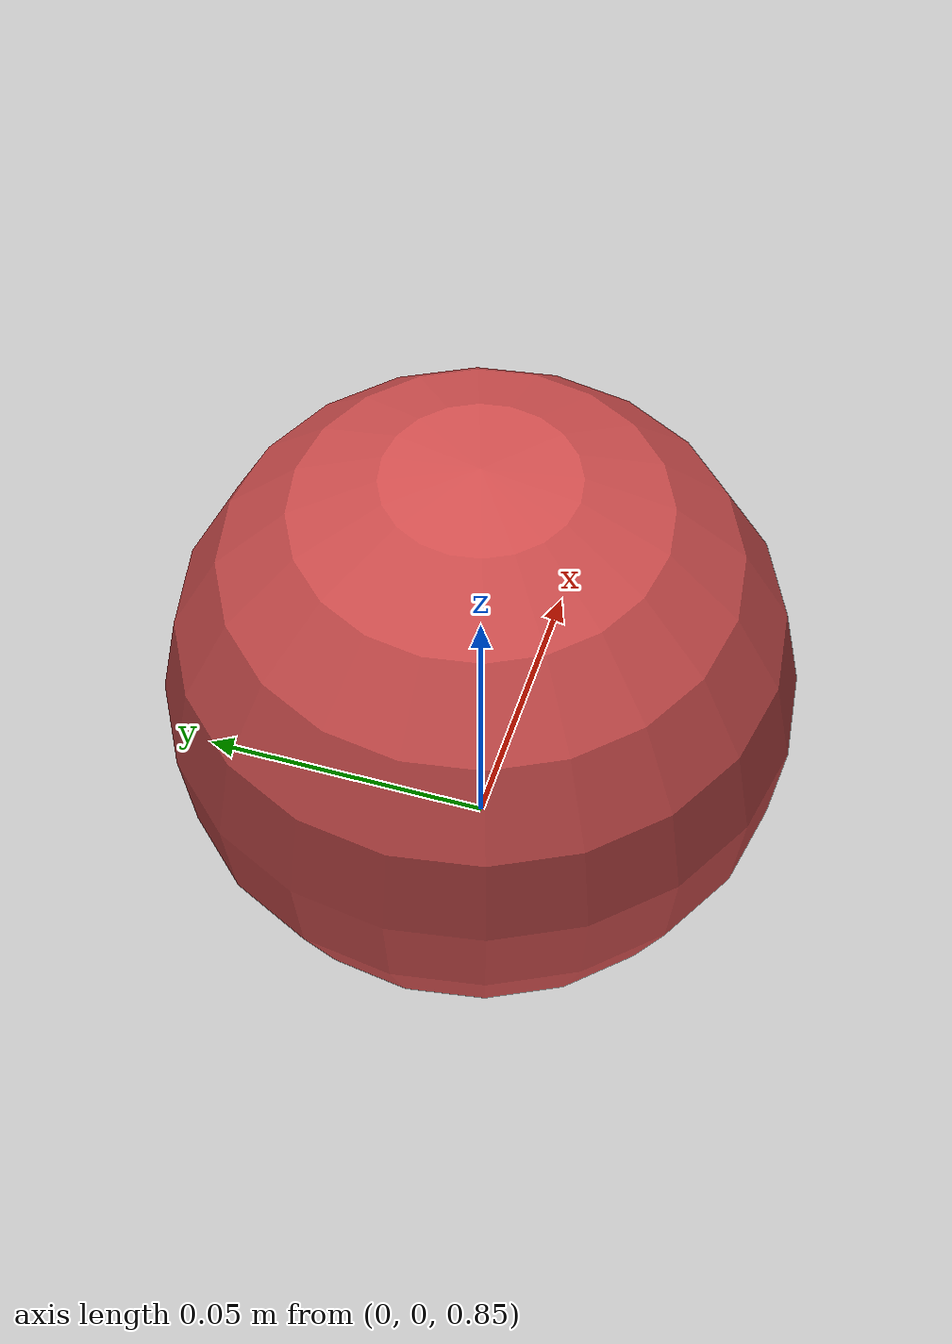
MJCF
<mujoco model="throw_000">
  <option timestep="0.001" gravity="0 0 -9.81"/>

  <visual>
    <headlight ambient="0.5 0.5 0.5"/>
  </visual>

  <asset>
    <texture name="grid" type="2d" builtin="checker" width="512" height="512" rgb1="0.2 0.3 0.4" rgb2="0.3 0.4 0.5"/>
    <material name="grid" texture="grid" texrepeat="1 1" reflectance="0.2"/>
    <material name="finger" rgba="0.8 0.3 0.3 1.0"/>
  </asset>

  <worldbody>
    <!-- Ground plane -->
    <geom name="floor" type="plane" size="2 2 0.1" material="grid"
          condim="6" friction="0.5813981305244577 0.005 0.0001" solref="0.02 1.3920546208850417"/>

    <!-- Sphere -->
    <body name="fingertip" pos="0 0 0.8855384713174609">
      <freejoint/>
      <geom name="finger" type="sphere" size="0.05293061515770725" mass="0.1862285800903757" material="finger"
            condim="6" friction="0.5813981305244577 0.005 0.0001" solref="0.02 1.3920546208850417"/>
      <site name="contact_site" pos="0 0 0" size="0.001"/>
    </body>
  </worldbody>

  <sensor>
    <touch name="finger_touch" site="contact_site"/>
    <framepos name="finger_pos" objtype="site" objname="contact_site"/>
    <framequat name="finger_quat" objtype="site" objname="contact_site"/>
    <framelinvel name="finger_vel" objtype="site" objname="contact_site"/>
  </sensor>
</mujoco>
